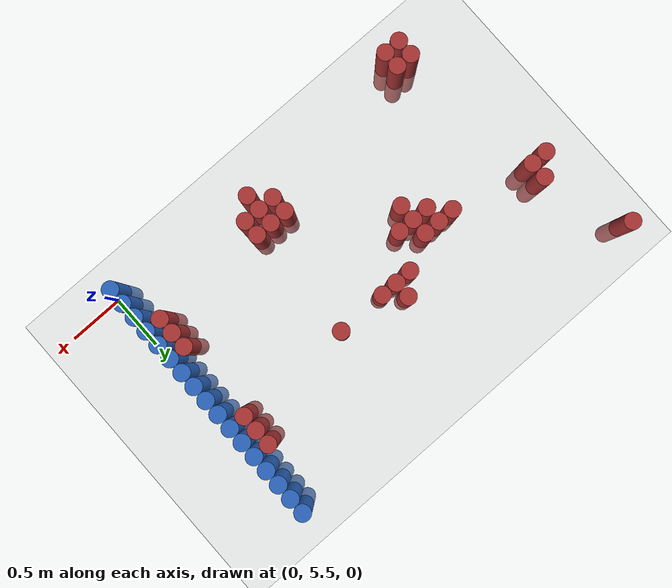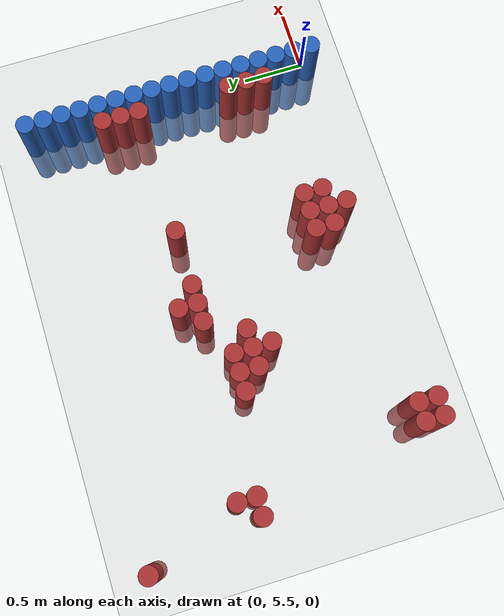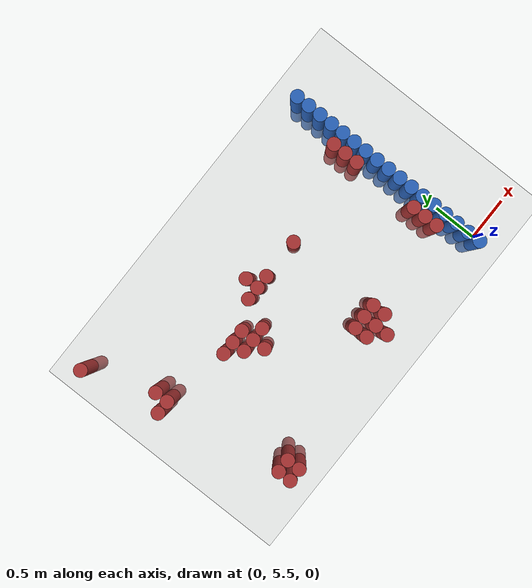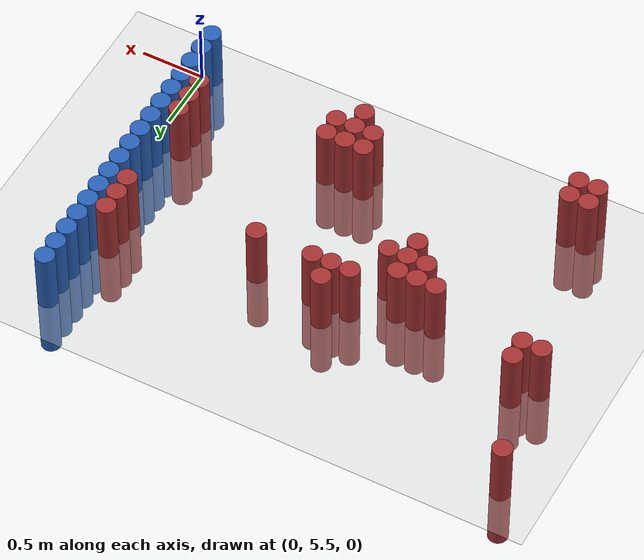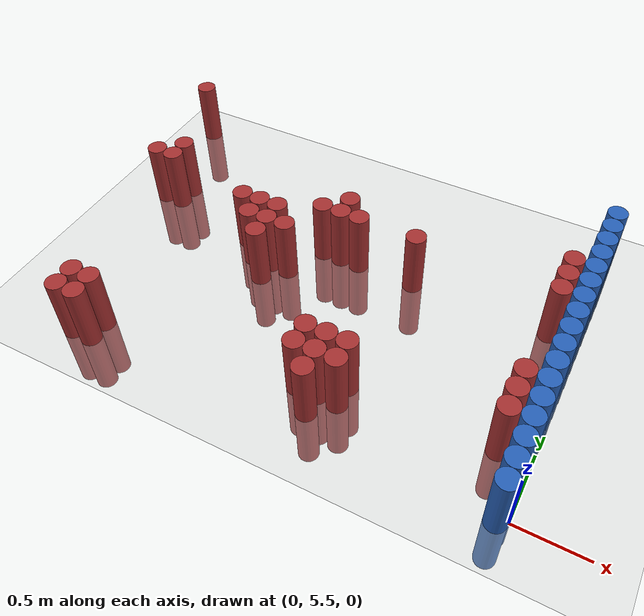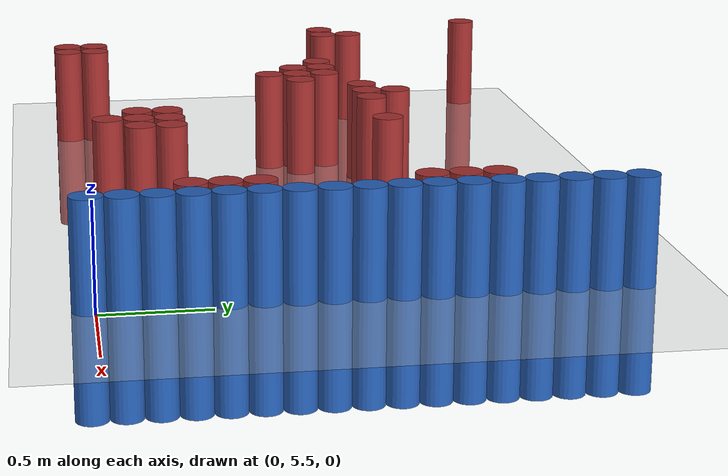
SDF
<sdf version="1.6">
 <world name="default">
  <model name="ground_plane">
   <static>1</static>
   <link name="link">
    <collision name="collision">
     <geometry><plane><normal>0 0 1</normal><size>100 100</size></plane></geometry>
     <surface><friction><ode><mu>100</mu><mu2>50</mu2></ode></friction></surface>
    </collision>
    <visual name="visual">
     <cast_shadows>0</cast_shadows>
     <geometry><plane><normal>0 0 1</normal><size>100 100</size></plane></geometry>
     <material>
      <script><uri>file://media/materials/scripts/gazebo.material</uri><name>Gazebo/Grey</name></script>
     </material>
    </visual>
   </link>
  </model>
  <model name="unit_cylinder_151">
   <static>1</static>
   <pose>-3.675000 7.875000 0.000000 0.000000 0.000000 0.000000</pose>
   <link name="link">
    <inertial>
     <mass>1</mass>
     <inertia><ixx>0.145833</ixx><ixy>0</ixy><ixz>0</ixz><iyy>0.145833</iyy><iyz>0</iyz><izz>0.125</izz></inertia>
    </inertial>
    <collision name="collision">
     <geometry><cylinder><radius>0.075000</radius><length>1</length></cylinder></geometry>
    </collision>
    <visual name="visual">
     <geometry><cylinder><radius>0.075000</radius><length>1</length></cylinder></geometry>
     <material>
      <ambient>0.648000 0.192000 0.192000 1</ambient>
      <diffuse>0.648000 0.192000 0.192000 1</diffuse>
     </material>
     <material>
      <script><name>Gazebo/Grey</name><uri>file://media/materials/scripts/gazebo.material</uri></script>
     </material>
    </visual>
   </link>
  </model>
  <model name="unit_cylinder_154">
   <static>1</static>
   <pose>-3.525000 6.975000 0.000000 0.000000 0.000000 0.000000</pose>
   <link name="link">
    <inertial>
     <mass>1</mass>
     <inertia><ixx>0.145833</ixx><ixy>0</ixy><ixz>0</ixz><iyy>0.145833</iyy><iyz>0</iyz><izz>0.125</izz></inertia>
    </inertial>
    <collision name="collision">
     <geometry><cylinder><radius>0.075000</radius><length>1</length></cylinder></geometry>
    </collision>
    <visual name="visual">
     <geometry><cylinder><radius>0.075000</radius><length>1</length></cylinder></geometry>
     <material>
      <ambient>0.648000 0.192000 0.192000 1</ambient>
      <diffuse>0.648000 0.192000 0.192000 1</diffuse>
     </material>
     <material>
      <script><name>Gazebo/Grey</name><uri>file://media/materials/scripts/gazebo.material</uri></script>
     </material>
    </visual>
   </link>
  </model>
  <model name="unit_cylinder_157">
   <static>1</static>
   <pose>-3.375000 6.975000 0.000000 0.000000 0.000000 0.000000</pose>
   <link name="link">
    <inertial>
     <mass>1</mass>
     <inertia><ixx>0.145833</ixx><ixy>0</ixy><ixz>0</ixz><iyy>0.145833</iyy><iyz>0</iyz><izz>0.125</izz></inertia>
    </inertial>
    <collision name="collision">
     <geometry><cylinder><radius>0.075000</radius><length>1</length></cylinder></geometry>
    </collision>
    <visual name="visual">
     <geometry><cylinder><radius>0.075000</radius><length>1</length></cylinder></geometry>
     <material>
      <ambient>0.648000 0.192000 0.192000 1</ambient>
      <diffuse>0.648000 0.192000 0.192000 1</diffuse>
     </material>
     <material>
      <script><name>Gazebo/Grey</name><uri>file://media/materials/scripts/gazebo.material</uri></script>
     </material>
    </visual>
   </link>
  </model>
  <model name="unit_cylinder_158">
   <static>1</static>
   <pose>-3.375000 7.125000 0.000000 0.000000 0.000000 0.000000</pose>
   <link name="link">
    <inertial>
     <mass>1</mass>
     <inertia><ixx>0.145833</ixx><ixy>0</ixy><ixz>0</ixz><iyy>0.145833</iyy><iyz>0</iyz><izz>0.125</izz></inertia>
    </inertial>
    <collision name="collision">
     <geometry><cylinder><radius>0.075000</radius><length>1</length></cylinder></geometry>
    </collision>
    <visual name="visual">
     <geometry><cylinder><radius>0.075000</radius><length>1</length></cylinder></geometry>
     <material>
      <ambient>0.648000 0.192000 0.192000 1</ambient>
      <diffuse>0.648000 0.192000 0.192000 1</diffuse>
     </material>
     <material>
      <script><name>Gazebo/Grey</name><uri>file://media/materials/scripts/gazebo.material</uri></script>
     </material>
    </visual>
   </link>
  </model>
  <model name="unit_cylinder_161">
   <static>1</static>
   <pose>-3.225000 5.475000 0.000000 0.000000 0.000000 0.000000</pose>
   <link name="link">
    <inertial>
     <mass>1</mass>
     <inertia><ixx>0.145833</ixx><ixy>0</ixy><ixz>0</ixz><iyy>0.145833</iyy><iyz>0</iyz><izz>0.125</izz></inertia>
    </inertial>
    <collision name="collision">
     <geometry><cylinder><radius>0.075000</radius><length>1</length></cylinder></geometry>
    </collision>
    <visual name="visual">
     <geometry><cylinder><radius>0.075000</radius><length>1</length></cylinder></geometry>
     <material>
      <ambient>0.648000 0.192000 0.192000 1</ambient>
      <diffuse>0.648000 0.192000 0.192000 1</diffuse>
     </material>
     <material>
      <script><name>Gazebo/Grey</name><uri>file://media/materials/scripts/gazebo.material</uri></script>
     </material>
    </visual>
   </link>
  </model>
  <model name="unit_cylinder_162">
   <static>1</static>
   <pose>-3.225000 5.625000 0.000000 0.000000 0.000000 0.000000</pose>
   <link name="link">
    <inertial>
     <mass>1</mass>
     <inertia><ixx>0.145833</ixx><ixy>0</ixy><ixz>0</ixz><iyy>0.145833</iyy><iyz>0</iyz><izz>0.125</izz></inertia>
    </inertial>
    <collision name="collision">
     <geometry><cylinder><radius>0.075000</radius><length>1</length></cylinder></geometry>
    </collision>
    <visual name="visual">
     <geometry><cylinder><radius>0.075000</radius><length>1</length></cylinder></geometry>
     <material>
      <ambient>0.648000 0.192000 0.192000 1</ambient>
      <diffuse>0.648000 0.192000 0.192000 1</diffuse>
     </material>
     <material>
      <script><name>Gazebo/Grey</name><uri>file://media/materials/scripts/gazebo.material</uri></script>
     </material>
    </visual>
   </link>
  </model>
  <model name="unit_cylinder_163">
   <static>1</static>
   <pose>-3.075000 5.475000 0.000000 0.000000 0.000000 0.000000</pose>
   <link name="link">
    <inertial>
     <mass>1</mass>
     <inertia><ixx>0.145833</ixx><ixy>0</ixy><ixz>0</ixz><iyy>0.145833</iyy><iyz>0</iyz><izz>0.125</izz></inertia>
    </inertial>
    <collision name="collision">
     <geometry><cylinder><radius>0.075000</radius><length>1</length></cylinder></geometry>
    </collision>
    <visual name="visual">
     <geometry><cylinder><radius>0.075000</radius><length>1</length></cylinder></geometry>
     <material>
      <ambient>0.648000 0.192000 0.192000 1</ambient>
      <diffuse>0.648000 0.192000 0.192000 1</diffuse>
     </material>
     <material>
      <script><name>Gazebo/Grey</name><uri>file://media/materials/scripts/gazebo.material</uri></script>
     </material>
    </visual>
   </link>
  </model>
  <model name="unit_cylinder_164">
   <static>1</static>
   <pose>-3.075000 5.625000 0.000000 0.000000 0.000000 0.000000</pose>
   <link name="link">
    <inertial>
     <mass>1</mass>
     <inertia><ixx>0.145833</ixx><ixy>0</ixy><ixz>0</ixz><iyy>0.145833</iyy><iyz>0</iyz><izz>0.125</izz></inertia>
    </inertial>
    <collision name="collision">
     <geometry><cylinder><radius>0.075000</radius><length>1</length></cylinder></geometry>
    </collision>
    <visual name="visual">
     <geometry><cylinder><radius>0.075000</radius><length>1</length></cylinder></geometry>
     <material>
      <ambient>0.648000 0.192000 0.192000 1</ambient>
      <diffuse>0.648000 0.192000 0.192000 1</diffuse>
     </material>
     <material>
      <script><name>Gazebo/Grey</name><uri>file://media/materials/scripts/gazebo.material</uri></script>
     </material>
    </visual>
   </link>
  </model>
  <model name="unit_cylinder_165">
   <static>1</static>
   <pose>-2.625000 6.825000 0.000000 0.000000 0.000000 0.000000</pose>
   <link name="link">
    <inertial>
     <mass>1</mass>
     <inertia><ixx>0.145833</ixx><ixy>0</ixy><ixz>0</ixz><iyy>0.145833</iyy><iyz>0</iyz><izz>0.125</izz></inertia>
    </inertial>
    <collision name="collision">
     <geometry><cylinder><radius>0.075000</radius><length>1</length></cylinder></geometry>
    </collision>
    <visual name="visual">
     <geometry><cylinder><radius>0.075000</radius><length>1</length></cylinder></geometry>
     <material>
      <ambient>0.648000 0.192000 0.192000 1</ambient>
      <diffuse>0.648000 0.192000 0.192000 1</diffuse>
     </material>
     <material>
      <script><name>Gazebo/Grey</name><uri>file://media/materials/scripts/gazebo.material</uri></script>
     </material>
    </visual>
   </link>
  </model>
  <model name="unit_cylinder_166">
   <static>1</static>
   <pose>-2.475000 6.675000 0.000000 0.000000 0.000000 0.000000</pose>
   <link name="link">
    <inertial>
     <mass>1</mass>
     <inertia><ixx>0.145833</ixx><ixy>0</ixy><ixz>0</ixz><iyy>0.145833</iyy><iyz>0</iyz><izz>0.125</izz></inertia>
    </inertial>
    <collision name="collision">
     <geometry><cylinder><radius>0.075000</radius><length>1</length></cylinder></geometry>
    </collision>
    <visual name="visual">
     <geometry><cylinder><radius>0.075000</radius><length>1</length></cylinder></geometry>
     <material>
      <ambient>0.648000 0.192000 0.192000 1</ambient>
      <diffuse>0.648000 0.192000 0.192000 1</diffuse>
     </material>
     <material>
      <script><name>Gazebo/Grey</name><uri>file://media/materials/scripts/gazebo.material</uri></script>
     </material>
    </visual>
   </link>
  </model>
  <model name="unit_cylinder_167">
   <static>1</static>
   <pose>-2.475000 6.825000 0.000000 0.000000 0.000000 0.000000</pose>
   <link name="link">
    <inertial>
     <mass>1</mass>
     <inertia><ixx>0.145833</ixx><ixy>0</ixy><ixz>0</ixz><iyy>0.145833</iyy><iyz>0</iyz><izz>0.125</izz></inertia>
    </inertial>
    <collision name="collision">
     <geometry><cylinder><radius>0.075000</radius><length>1</length></cylinder></geometry>
    </collision>
    <visual name="visual">
     <geometry><cylinder><radius>0.075000</radius><length>1</length></cylinder></geometry>
     <material>
      <ambient>0.648000 0.192000 0.192000 1</ambient>
      <diffuse>0.648000 0.192000 0.192000 1</diffuse>
     </material>
     <material>
      <script><name>Gazebo/Grey</name><uri>file://media/materials/scripts/gazebo.material</uri></script>
     </material>
    </visual>
   </link>
  </model>
  <model name="unit_cylinder_168">
   <static>1</static>
   <pose>-2.325000 6.525000 0.000000 0.000000 0.000000 0.000000</pose>
   <link name="link">
    <inertial>
     <mass>1</mass>
     <inertia><ixx>0.145833</ixx><ixy>0</ixy><ixz>0</ixz><iyy>0.145833</iyy><iyz>0</iyz><izz>0.125</izz></inertia>
    </inertial>
    <collision name="collision">
     <geometry><cylinder><radius>0.075000</radius><length>1</length></cylinder></geometry>
    </collision>
    <visual name="visual">
     <geometry><cylinder><radius>0.075000</radius><length>1</length></cylinder></geometry>
     <material>
      <ambient>0.648000 0.192000 0.192000 1</ambient>
      <diffuse>0.648000 0.192000 0.192000 1</diffuse>
     </material>
     <material>
      <script><name>Gazebo/Grey</name><uri>file://media/materials/scripts/gazebo.material</uri></script>
     </material>
    </visual>
   </link>
  </model>
  <model name="unit_cylinder_169">
   <static>1</static>
   <pose>-2.325000 6.675000 0.000000 0.000000 0.000000 0.000000</pose>
   <link name="link">
    <inertial>
     <mass>1</mass>
     <inertia><ixx>0.145833</ixx><ixy>0</ixy><ixz>0</ixz><iyy>0.145833</iyy><iyz>0</iyz><izz>0.125</izz></inertia>
    </inertial>
    <collision name="collision">
     <geometry><cylinder><radius>0.075000</radius><length>1</length></cylinder></geometry>
    </collision>
    <visual name="visual">
     <geometry><cylinder><radius>0.075000</radius><length>1</length></cylinder></geometry>
     <material>
      <ambient>0.648000 0.192000 0.192000 1</ambient>
      <diffuse>0.648000 0.192000 0.192000 1</diffuse>
     </material>
     <material>
      <script><name>Gazebo/Grey</name><uri>file://media/materials/scripts/gazebo.material</uri></script>
     </material>
    </visual>
   </link>
  </model>
  <model name="unit_cylinder_170">
   <static>1</static>
   <pose>-2.325000 6.825000 0.000000 0.000000 0.000000 0.000000</pose>
   <link name="link">
    <inertial>
     <mass>1</mass>
     <inertia><ixx>0.145833</ixx><ixy>0</ixy><ixz>0</ixz><iyy>0.145833</iyy><iyz>0</iyz><izz>0.125</izz></inertia>
    </inertial>
    <collision name="collision">
     <geometry><cylinder><radius>0.075000</radius><length>1</length></cylinder></geometry>
    </collision>
    <visual name="visual">
     <geometry><cylinder><radius>0.075000</radius><length>1</length></cylinder></geometry>
     <material>
      <ambient>0.648000 0.192000 0.192000 1</ambient>
      <diffuse>0.648000 0.192000 0.192000 1</diffuse>
     </material>
     <material>
      <script><name>Gazebo/Grey</name><uri>file://media/materials/scripts/gazebo.material</uri></script>
     </material>
    </visual>
   </link>
  </model>
  <model name="unit_cylinder_171">
   <static>1</static>
   <pose>-2.175000 6.675000 0.000000 0.000000 0.000000 0.000000</pose>
   <link name="link">
    <inertial>
     <mass>1</mass>
     <inertia><ixx>0.145833</ixx><ixy>0</ixy><ixz>0</ixz><iyy>0.145833</iyy><iyz>0</iyz><izz>0.125</izz></inertia>
    </inertial>
    <collision name="collision">
     <geometry><cylinder><radius>0.075000</radius><length>1</length></cylinder></geometry>
    </collision>
    <visual name="visual">
     <geometry><cylinder><radius>0.075000</radius><length>1</length></cylinder></geometry>
     <material>
      <ambient>0.648000 0.192000 0.192000 1</ambient>
      <diffuse>0.648000 0.192000 0.192000 1</diffuse>
     </material>
     <material>
      <script><name>Gazebo/Grey</name><uri>file://media/materials/scripts/gazebo.material</uri></script>
     </material>
    </visual>
   </link>
  </model>
  <model name="unit_cylinder_172">
   <static>1</static>
   <pose>-2.025000 6.975000 0.000000 0.000000 0.000000 0.000000</pose>
   <link name="link">
    <inertial>
     <mass>1</mass>
     <inertia><ixx>0.145833</ixx><ixy>0</ixy><ixz>0</ixz><iyy>0.145833</iyy><iyz>0</iyz><izz>0.125</izz></inertia>
    </inertial>
    <collision name="collision">
     <geometry><cylinder><radius>0.075000</radius><length>1</length></cylinder></geometry>
    </collision>
    <visual name="visual">
     <geometry><cylinder><radius>0.075000</radius><length>1</length></cylinder></geometry>
     <material>
      <ambient>0.648000 0.192000 0.192000 1</ambient>
      <diffuse>0.648000 0.192000 0.192000 1</diffuse>
     </material>
     <material>
      <script><name>Gazebo/Grey</name><uri>file://media/materials/scripts/gazebo.material</uri></script>
     </material>
    </visual>
   </link>
  </model>
  <model name="unit_cylinder_173">
   <static>1</static>
   <pose>-1.875000 6.975000 0.000000 0.000000 0.000000 0.000000</pose>
   <link name="link">
    <inertial>
     <mass>1</mass>
     <inertia><ixx>0.145833</ixx><ixy>0</ixy><ixz>0</ixz><iyy>0.145833</iyy><iyz>0</iyz><izz>0.125</izz></inertia>
    </inertial>
    <collision name="collision">
     <geometry><cylinder><radius>0.075000</radius><length>1</length></cylinder></geometry>
    </collision>
    <visual name="visual">
     <geometry><cylinder><radius>0.075000</radius><length>1</length></cylinder></geometry>
     <material>
      <ambient>0.648000 0.192000 0.192000 1</ambient>
      <diffuse>0.648000 0.192000 0.192000 1</diffuse>
     </material>
     <material>
      <script><name>Gazebo/Grey</name><uri>file://media/materials/scripts/gazebo.material</uri></script>
     </material>
    </visual>
   </link>
  </model>
  <model name="unit_cylinder_174">
   <static>1</static>
   <pose>-1.875000 7.125000 0.000000 0.000000 0.000000 0.000000</pose>
   <link name="link">
    <inertial>
     <mass>1</mass>
     <inertia><ixx>0.145833</ixx><ixy>0</ixy><ixz>0</ixz><iyy>0.145833</iyy><iyz>0</iyz><izz>0.125</izz></inertia>
    </inertial>
    <collision name="collision">
     <geometry><cylinder><radius>0.075000</radius><length>1</length></cylinder></geometry>
    </collision>
    <visual name="visual">
     <geometry><cylinder><radius>0.075000</radius><length>1</length></cylinder></geometry>
     <material>
      <ambient>0.648000 0.192000 0.192000 1</ambient>
      <diffuse>0.648000 0.192000 0.192000 1</diffuse>
     </material>
     <material>
      <script><name>Gazebo/Grey</name><uri>file://media/materials/scripts/gazebo.material</uri></script>
     </material>
    </visual>
   </link>
  </model>
  <model name="unit_cylinder_178">
   <static>1</static>
   <pose>-1.725000 6.975000 0.000000 0.000000 0.000000 0.000000</pose>
   <link name="link">
    <inertial>
     <mass>1</mass>
     <inertia><ixx>0.145833</ixx><ixy>0</ixy><ixz>0</ixz><iyy>0.145833</iyy><iyz>0</iyz><izz>0.125</izz></inertia>
    </inertial>
    <collision name="collision">
     <geometry><cylinder><radius>0.075000</radius><length>1</length></cylinder></geometry>
    </collision>
    <visual name="visual">
     <geometry><cylinder><radius>0.075000</radius><length>1</length></cylinder></geometry>
     <material>
      <ambient>0.648000 0.192000 0.192000 1</ambient>
      <diffuse>0.648000 0.192000 0.192000 1</diffuse>
     </material>
     <material>
      <script><name>Gazebo/Grey</name><uri>file://media/materials/scripts/gazebo.material</uri></script>
     </material>
    </visual>
   </link>
  </model>
  <model name="unit_cylinder_183">
   <static>1</static>
   <pose>-1.575000 5.775000 0.000000 0.000000 0.000000 0.000000</pose>
   <link name="link">
    <inertial>
     <mass>1</mass>
     <inertia><ixx>0.145833</ixx><ixy>0</ixy><ixz>0</ixz><iyy>0.145833</iyy><iyz>0</iyz><izz>0.125</izz></inertia>
    </inertial>
    <collision name="collision">
     <geometry><cylinder><radius>0.075000</radius><length>1</length></cylinder></geometry>
    </collision>
    <visual name="visual">
     <geometry><cylinder><radius>0.075000</radius><length>1</length></cylinder></geometry>
     <material>
      <ambient>0.648000 0.192000 0.192000 1</ambient>
      <diffuse>0.648000 0.192000 0.192000 1</diffuse>
     </material>
     <material>
      <script><name>Gazebo/Grey</name><uri>file://media/materials/scripts/gazebo.material</uri></script>
     </material>
    </visual>
   </link>
  </model>
  <model name="unit_cylinder_184">
   <static>1</static>
   <pose>-1.575000 5.925000 0.000000 0.000000 0.000000 0.000000</pose>
   <link name="link">
    <inertial>
     <mass>1</mass>
     <inertia><ixx>0.145833</ixx><ixy>0</ixy><ixz>0</ixz><iyy>0.145833</iyy><iyz>0</iyz><izz>0.125</izz></inertia>
    </inertial>
    <collision name="collision">
     <geometry><cylinder><radius>0.075000</radius><length>1</length></cylinder></geometry>
    </collision>
    <visual name="visual">
     <geometry><cylinder><radius>0.075000</radius><length>1</length></cylinder></geometry>
     <material>
      <ambient>0.648000 0.192000 0.192000 1</ambient>
      <diffuse>0.648000 0.192000 0.192000 1</diffuse>
     </material>
     <material>
      <script><name>Gazebo/Grey</name><uri>file://media/materials/scripts/gazebo.material</uri></script>
     </material>
    </visual>
   </link>
  </model>
  <model name="unit_cylinder_188">
   <static>1</static>
   <pose>-1.425000 5.625000 0.000000 0.000000 0.000000 0.000000</pose>
   <link name="link">
    <inertial>
     <mass>1</mass>
     <inertia><ixx>0.145833</ixx><ixy>0</ixy><ixz>0</ixz><iyy>0.145833</iyy><iyz>0</iyz><izz>0.125</izz></inertia>
    </inertial>
    <collision name="collision">
     <geometry><cylinder><radius>0.075000</radius><length>1</length></cylinder></geometry>
    </collision>
    <visual name="visual">
     <geometry><cylinder><radius>0.075000</radius><length>1</length></cylinder></geometry>
     <material>
      <ambient>0.648000 0.192000 0.192000 1</ambient>
      <diffuse>0.648000 0.192000 0.192000 1</diffuse>
     </material>
     <material>
      <script><name>Gazebo/Grey</name><uri>file://media/materials/scripts/gazebo.material</uri></script>
     </material>
    </visual>
   </link>
  </model>
  <model name="unit_cylinder_189">
   <static>1</static>
   <pose>-1.425000 5.775000 0.000000 0.000000 0.000000 0.000000</pose>
   <link name="link">
    <inertial>
     <mass>1</mass>
     <inertia><ixx>0.145833</ixx><ixy>0</ixy><ixz>0</ixz><iyy>0.145833</iyy><iyz>0</iyz><izz>0.125</izz></inertia>
    </inertial>
    <collision name="collision">
     <geometry><cylinder><radius>0.075000</radius><length>1</length></cylinder></geometry>
    </collision>
    <visual name="visual">
     <geometry><cylinder><radius>0.075000</radius><length>1</length></cylinder></geometry>
     <material>
      <ambient>0.648000 0.192000 0.192000 1</ambient>
      <diffuse>0.648000 0.192000 0.192000 1</diffuse>
     </material>
     <material>
      <script><name>Gazebo/Grey</name><uri>file://media/materials/scripts/gazebo.material</uri></script>
     </material>
    </visual>
   </link>
  </model>
  <model name="unit_cylinder_190">
   <static>1</static>
   <pose>-1.425000 5.925000 0.000000 0.000000 0.000000 0.000000</pose>
   <link name="link">
    <inertial>
     <mass>1</mass>
     <inertia><ixx>0.145833</ixx><ixy>0</ixy><ixz>0</ixz><iyy>0.145833</iyy><iyz>0</iyz><izz>0.125</izz></inertia>
    </inertial>
    <collision name="collision">
     <geometry><cylinder><radius>0.075000</radius><length>1</length></cylinder></geometry>
    </collision>
    <visual name="visual">
     <geometry><cylinder><radius>0.075000</radius><length>1</length></cylinder></geometry>
     <material>
      <ambient>0.648000 0.192000 0.192000 1</ambient>
      <diffuse>0.648000 0.192000 0.192000 1</diffuse>
     </material>
     <material>
      <script><name>Gazebo/Grey</name><uri>file://media/materials/scripts/gazebo.material</uri></script>
     </material>
    </visual>
   </link>
  </model>
  <model name="unit_cylinder_193">
   <static>1</static>
   <pose>-1.275000 5.775000 0.000000 0.000000 0.000000 0.000000</pose>
   <link name="link">
    <inertial>
     <mass>1</mass>
     <inertia><ixx>0.145833</ixx><ixy>0</ixy><ixz>0</ixz><iyy>0.145833</iyy><iyz>0</iyz><izz>0.125</izz></inertia>
    </inertial>
    <collision name="collision">
     <geometry><cylinder><radius>0.075000</radius><length>1</length></cylinder></geometry>
    </collision>
    <visual name="visual">
     <geometry><cylinder><radius>0.075000</radius><length>1</length></cylinder></geometry>
     <material>
      <ambient>0.648000 0.192000 0.192000 1</ambient>
      <diffuse>0.648000 0.192000 0.192000 1</diffuse>
     </material>
     <material>
      <script><name>Gazebo/Grey</name><uri>file://media/materials/scripts/gazebo.material</uri></script>
     </material>
    </visual>
   </link>
  </model>
  <model name="unit_cylinder_194">
   <static>1</static>
   <pose>-1.275000 5.925000 0.000000 0.000000 0.000000 0.000000</pose>
   <link name="link">
    <inertial>
     <mass>1</mass>
     <inertia><ixx>0.145833</ixx><ixy>0</ixy><ixz>0</ixz><iyy>0.145833</iyy><iyz>0</iyz><izz>0.125</izz></inertia>
    </inertial>
    <collision name="collision">
     <geometry><cylinder><radius>0.075000</radius><length>1</length></cylinder></geometry>
    </collision>
    <visual name="visual">
     <geometry><cylinder><radius>0.075000</radius><length>1</length></cylinder></geometry>
     <material>
      <ambient>0.648000 0.192000 0.192000 1</ambient>
      <diffuse>0.648000 0.192000 0.192000 1</diffuse>
     </material>
     <material>
      <script><name>Gazebo/Grey</name><uri>file://media/materials/scripts/gazebo.material</uri></script>
     </material>
    </visual>
   </link>
  </model>
  <model name="unit_cylinder_195">
   <static>1</static>
   <pose>-1.275000 6.975000 0.000000 0.000000 0.000000 0.000000</pose>
   <link name="link">
    <inertial>
     <mass>1</mass>
     <inertia><ixx>0.145833</ixx><ixy>0</ixy><ixz>0</ixz><iyy>0.145833</iyy><iyz>0</iyz><izz>0.125</izz></inertia>
    </inertial>
    <collision name="collision">
     <geometry><cylinder><radius>0.075000</radius><length>1</length></cylinder></geometry>
    </collision>
    <visual name="visual">
     <geometry><cylinder><radius>0.075000</radius><length>1</length></cylinder></geometry>
     <material>
      <ambient>0.648000 0.192000 0.192000 1</ambient>
      <diffuse>0.648000 0.192000 0.192000 1</diffuse>
     </material>
     <material>
      <script><name>Gazebo/Grey</name><uri>file://media/materials/scripts/gazebo.material</uri></script>
     </material>
    </visual>
   </link>
  </model>
  <model name="unit_cylinder_211">
   <static>1</static>
   <pose>-0.225000 5.925000 0.000000 0.000000 0.000000 0.000000</pose>
   <link name="link">
    <inertial>
     <mass>1</mass>
     <inertia><ixx>0.145833</ixx><ixy>0</ixy><ixz>0</ixz><iyy>0.145833</iyy><iyz>0</iyz><izz>0.125</izz></inertia>
    </inertial>
    <collision name="collision">
     <geometry><cylinder><radius>0.075000</radius><length>1</length></cylinder></geometry>
    </collision>
    <visual name="visual">
     <geometry><cylinder><radius>0.075000</radius><length>1</length></cylinder></geometry>
     <material>
      <ambient>0.648000 0.192000 0.192000 1</ambient>
      <diffuse>0.648000 0.192000 0.192000 1</diffuse>
     </material>
     <material>
      <script><name>Gazebo/Grey</name><uri>file://media/materials/scripts/gazebo.material</uri></script>
     </material>
    </visual>
   </link>
  </model>
  <model name="unit_cylinder_212">
   <static>1</static>
   <pose>-0.225000 6.075000 0.000000 0.000000 0.000000 0.000000</pose>
   <link name="link">
    <inertial>
     <mass>1</mass>
     <inertia><ixx>0.145833</ixx><ixy>0</ixy><ixz>0</ixz><iyy>0.145833</iyy><iyz>0</iyz><izz>0.125</izz></inertia>
    </inertial>
    <collision name="collision">
     <geometry><cylinder><radius>0.075000</radius><length>1</length></cylinder></geometry>
    </collision>
    <visual name="visual">
     <geometry><cylinder><radius>0.075000</radius><length>1</length></cylinder></geometry>
     <material>
      <ambient>0.648000 0.192000 0.192000 1</ambient>
      <diffuse>0.648000 0.192000 0.192000 1</diffuse>
     </material>
     <material>
      <script><name>Gazebo/Grey</name><uri>file://media/materials/scripts/gazebo.material</uri></script>
     </material>
    </visual>
   </link>
  </model>
  <model name="unit_cylinder_213">
   <static>1</static>
   <pose>-0.225000 6.225000 0.000000 0.000000 0.000000 0.000000</pose>
   <link name="link">
    <inertial>
     <mass>1</mass>
     <inertia><ixx>0.145833</ixx><ixy>0</ixy><ixz>0</ixz><iyy>0.145833</iyy><iyz>0</iyz><izz>0.125</izz></inertia>
    </inertial>
    <collision name="collision">
     <geometry><cylinder><radius>0.075000</radius><length>1</length></cylinder></geometry>
    </collision>
    <visual name="visual">
     <geometry><cylinder><radius>0.075000</radius><length>1</length></cylinder></geometry>
     <material>
      <ambient>0.648000 0.192000 0.192000 1</ambient>
      <diffuse>0.648000 0.192000 0.192000 1</diffuse>
     </material>
     <material>
      <script><name>Gazebo/Grey</name><uri>file://media/materials/scripts/gazebo.material</uri></script>
     </material>
    </visual>
   </link>
  </model>
  <model name="unit_cylinder_214">
   <static>1</static>
   <pose>-0.225000 6.975000 0.000000 0.000000 0.000000 0.000000</pose>
   <link name="link">
    <inertial>
     <mass>1</mass>
     <inertia><ixx>0.145833</ixx><ixy>0</ixy><ixz>0</ixz><iyy>0.145833</iyy><iyz>0</iyz><izz>0.125</izz></inertia>
    </inertial>
    <collision name="collision">
     <geometry><cylinder><radius>0.075000</radius><length>1</length></cylinder></geometry>
    </collision>
    <visual name="visual">
     <geometry><cylinder><radius>0.075000</radius><length>1</length></cylinder></geometry>
     <material>
      <ambient>0.648000 0.192000 0.192000 1</ambient>
      <diffuse>0.648000 0.192000 0.192000 1</diffuse>
     </material>
     <material>
      <script><name>Gazebo/Grey</name><uri>file://media/materials/scripts/gazebo.material</uri></script>
     </material>
    </visual>
   </link>
  </model>
  <model name="unit_cylinder_215">
   <static>1</static>
   <pose>-0.225000 7.125000 0.000000 0.000000 0.000000 0.000000</pose>
   <link name="link">
    <inertial>
     <mass>1</mass>
     <inertia><ixx>0.145833</ixx><ixy>0</ixy><ixz>0</ixz><iyy>0.145833</iyy><iyz>0</iyz><izz>0.125</izz></inertia>
    </inertial>
    <collision name="collision">
     <geometry><cylinder><radius>0.075000</radius><length>1</length></cylinder></geometry>
    </collision>
    <visual name="visual">
     <geometry><cylinder><radius>0.075000</radius><length>1</length></cylinder></geometry>
     <material>
      <ambient>0.648000 0.192000 0.192000 1</ambient>
      <diffuse>0.648000 0.192000 0.192000 1</diffuse>
     </material>
     <material>
      <script><name>Gazebo/Grey</name><uri>file://media/materials/scripts/gazebo.material</uri></script>
     </material>
    </visual>
   </link>
  </model>
  <model name="unit_cylinder_216">
   <static>1</static>
   <pose>-0.225000 7.275000 0.000000 0.000000 0.000000 0.000000</pose>
   <link name="link">
    <inertial>
     <mass>1</mass>
     <inertia><ixx>0.145833</ixx><ixy>0</ixy><ixz>0</ixz><iyy>0.145833</iyy><iyz>0</iyz><izz>0.125</izz></inertia>
    </inertial>
    <collision name="collision">
     <geometry><cylinder><radius>0.075000</radius><length>1</length></cylinder></geometry>
    </collision>
    <visual name="visual">
     <geometry><cylinder><radius>0.075000</radius><length>1</length></cylinder></geometry>
     <material>
      <ambient>0.648000 0.192000 0.192000 1</ambient>
      <diffuse>0.648000 0.192000 0.192000 1</diffuse>
     </material>
     <material>
      <script><name>Gazebo/Grey</name><uri>file://media/materials/scripts/gazebo.material</uri></script>
     </material>
    </visual>
   </link>
  </model>
  <model name="unit_cylinder_223">
   <static>1</static>
   <pose>-0.075000 5.475000 0.000000 0.000000 0.000000 0.000000</pose>
   <link name="link">
    <inertial>
     <mass>1</mass>
     <inertia><ixx>0.145833</ixx><ixy>0</ixy><ixz>0</ixz><iyy>0.145833</iyy><iyz>0</iyz><izz>0.125</izz></inertia>
    </inertial>
    <collision name="collision">
     <geometry><cylinder><radius>0.075000</radius><length>1</length></cylinder></geometry>
    </collision>
    <visual name="visual">
     <geometry><cylinder><radius>0.075000</radius><length>1</length></cylinder></geometry>
     <material>
      <ambient>0.152000 0.379000 0.720000 1</ambient>
      <diffuse>0.152000 0.379000 0.720000 1</diffuse>
     </material>
     <material>
      <script><name>Gazebo/Grey</name><uri>file://media/materials/scripts/gazebo.material</uri></script>
     </material>
    </visual>
   </link>
  </model>
  <model name="unit_cylinder_224">
   <static>1</static>
   <pose>-0.075000 5.625000 0.000000 0.000000 0.000000 0.000000</pose>
   <link name="link">
    <inertial>
     <mass>1</mass>
     <inertia><ixx>0.145833</ixx><ixy>0</ixy><ixz>0</ixz><iyy>0.145833</iyy><iyz>0</iyz><izz>0.125</izz></inertia>
    </inertial>
    <collision name="collision">
     <geometry><cylinder><radius>0.075000</radius><length>1</length></cylinder></geometry>
    </collision>
    <visual name="visual">
     <geometry><cylinder><radius>0.075000</radius><length>1</length></cylinder></geometry>
     <material>
      <ambient>0.152000 0.379000 0.720000 1</ambient>
      <diffuse>0.152000 0.379000 0.720000 1</diffuse>
     </material>
     <material>
      <script><name>Gazebo/Grey</name><uri>file://media/materials/scripts/gazebo.material</uri></script>
     </material>
    </visual>
   </link>
  </model>
  <model name="unit_cylinder_225">
   <static>1</static>
   <pose>-0.075000 5.775000 0.000000 0.000000 0.000000 0.000000</pose>
   <link name="link">
    <inertial>
     <mass>1</mass>
     <inertia><ixx>0.145833</ixx><ixy>0</ixy><ixz>0</ixz><iyy>0.145833</iyy><iyz>0</iyz><izz>0.125</izz></inertia>
    </inertial>
    <collision name="collision">
     <geometry><cylinder><radius>0.075000</radius><length>1</length></cylinder></geometry>
    </collision>
    <visual name="visual">
     <geometry><cylinder><radius>0.075000</radius><length>1</length></cylinder></geometry>
     <material>
      <ambient>0.152000 0.379000 0.720000 1</ambient>
      <diffuse>0.152000 0.379000 0.720000 1</diffuse>
     </material>
     <material>
      <script><name>Gazebo/Grey</name><uri>file://media/materials/scripts/gazebo.material</uri></script>
     </material>
    </visual>
   </link>
  </model>
  <model name="unit_cylinder_226">
   <static>1</static>
   <pose>-0.075000 5.925000 0.000000 0.000000 0.000000 0.000000</pose>
   <link name="link">
    <inertial>
     <mass>1</mass>
     <inertia><ixx>0.145833</ixx><ixy>0</ixy><ixz>0</ixz><iyy>0.145833</iyy><iyz>0</iyz><izz>0.125</izz></inertia>
    </inertial>
    <collision name="collision">
     <geometry><cylinder><radius>0.075000</radius><length>1</length></cylinder></geometry>
    </collision>
    <visual name="visual">
     <geometry><cylinder><radius>0.075000</radius><length>1</length></cylinder></geometry>
     <material>
      <ambient>0.152000 0.379000 0.720000 1</ambient>
      <diffuse>0.152000 0.379000 0.720000 1</diffuse>
     </material>
     <material>
      <script><name>Gazebo/Grey</name><uri>file://media/materials/scripts/gazebo.material</uri></script>
     </material>
    </visual>
   </link>
  </model>
  <model name="unit_cylinder_227">
   <static>1</static>
   <pose>-0.075000 6.075000 0.000000 0.000000 0.000000 0.000000</pose>
   <link name="link">
    <inertial>
     <mass>1</mass>
     <inertia><ixx>0.145833</ixx><ixy>0</ixy><ixz>0</ixz><iyy>0.145833</iyy><iyz>0</iyz><izz>0.125</izz></inertia>
    </inertial>
    <collision name="collision">
     <geometry><cylinder><radius>0.075000</radius><length>1</length></cylinder></geometry>
    </collision>
    <visual name="visual">
     <geometry><cylinder><radius>0.075000</radius><length>1</length></cylinder></geometry>
     <material>
      <ambient>0.152000 0.379000 0.720000 1</ambient>
      <diffuse>0.152000 0.379000 0.720000 1</diffuse>
     </material>
     <material>
      <script><name>Gazebo/Grey</name><uri>file://media/materials/scripts/gazebo.material</uri></script>
     </material>
    </visual>
   </link>
  </model>
  <model name="unit_cylinder_228">
   <static>1</static>
   <pose>-0.075000 6.225000 0.000000 0.000000 0.000000 0.000000</pose>
   <link name="link">
    <inertial>
     <mass>1</mass>
     <inertia><ixx>0.145833</ixx><ixy>0</ixy><ixz>0</ixz><iyy>0.145833</iyy><iyz>0</iyz><izz>0.125</izz></inertia>
    </inertial>
    <collision name="collision">
     <geometry><cylinder><radius>0.075000</radius><length>1</length></cylinder></geometry>
    </collision>
    <visual name="visual">
     <geometry><cylinder><radius>0.075000</radius><length>1</length></cylinder></geometry>
     <material>
      <ambient>0.152000 0.379000 0.720000 1</ambient>
      <diffuse>0.152000 0.379000 0.720000 1</diffuse>
     </material>
     <material>
      <script><name>Gazebo/Grey</name><uri>file://media/materials/scripts/gazebo.material</uri></script>
     </material>
    </visual>
   </link>
  </model>
  <model name="unit_cylinder_229">
   <static>1</static>
   <pose>-0.075000 6.375000 0.000000 0.000000 0.000000 0.000000</pose>
   <link name="link">
    <inertial>
     <mass>1</mass>
     <inertia><ixx>0.145833</ixx><ixy>0</ixy><ixz>0</ixz><iyy>0.145833</iyy><iyz>0</iyz><izz>0.125</izz></inertia>
    </inertial>
    <collision name="collision">
     <geometry><cylinder><radius>0.075000</radius><length>1</length></cylinder></geometry>
    </collision>
    <visual name="visual">
     <geometry><cylinder><radius>0.075000</radius><length>1</length></cylinder></geometry>
     <material>
      <ambient>0.152000 0.379000 0.720000 1</ambient>
      <diffuse>0.152000 0.379000 0.720000 1</diffuse>
     </material>
     <material>
      <script><name>Gazebo/Grey</name><uri>file://media/materials/scripts/gazebo.material</uri></script>
     </material>
    </visual>
   </link>
  </model>
  <model name="unit_cylinder_230">
   <static>1</static>
   <pose>-0.075000 6.525000 0.000000 0.000000 0.000000 0.000000</pose>
   <link name="link">
    <inertial>
     <mass>1</mass>
     <inertia><ixx>0.145833</ixx><ixy>0</ixy><ixz>0</ixz><iyy>0.145833</iyy><iyz>0</iyz><izz>0.125</izz></inertia>
    </inertial>
    <collision name="collision">
     <geometry><cylinder><radius>0.075000</radius><length>1</length></cylinder></geometry>
    </collision>
    <visual name="visual">
     <geometry><cylinder><radius>0.075000</radius><length>1</length></cylinder></geometry>
     <material>
      <ambient>0.152000 0.379000 0.720000 1</ambient>
      <diffuse>0.152000 0.379000 0.720000 1</diffuse>
     </material>
     <material>
      <script><name>Gazebo/Grey</name><uri>file://media/materials/scripts/gazebo.material</uri></script>
     </material>
    </visual>
   </link>
  </model>
  <model name="unit_cylinder_231">
   <static>1</static>
   <pose>-0.075000 6.675000 0.000000 0.000000 0.000000 0.000000</pose>
   <link name="link">
    <inertial>
     <mass>1</mass>
     <inertia><ixx>0.145833</ixx><ixy>0</ixy><ixz>0</ixz><iyy>0.145833</iyy><iyz>0</iyz><izz>0.125</izz></inertia>
    </inertial>
    <collision name="collision">
     <geometry><cylinder><radius>0.075000</radius><length>1</length></cylinder></geometry>
    </collision>
    <visual name="visual">
     <geometry><cylinder><radius>0.075000</radius><length>1</length></cylinder></geometry>
     <material>
      <ambient>0.152000 0.379000 0.720000 1</ambient>
      <diffuse>0.152000 0.379000 0.720000 1</diffuse>
     </material>
     <material>
      <script><name>Gazebo/Grey</name><uri>file://media/materials/scripts/gazebo.material</uri></script>
     </material>
    </visual>
   </link>
  </model>
  <model name="unit_cylinder_232">
   <static>1</static>
   <pose>-0.075000 6.825000 0.000000 0.000000 0.000000 0.000000</pose>
   <link name="link">
    <inertial>
     <mass>1</mass>
     <inertia><ixx>0.145833</ixx><ixy>0</ixy><ixz>0</ixz><iyy>0.145833</iyy><iyz>0</iyz><izz>0.125</izz></inertia>
    </inertial>
    <collision name="collision">
     <geometry><cylinder><radius>0.075000</radius><length>1</length></cylinder></geometry>
    </collision>
    <visual name="visual">
     <geometry><cylinder><radius>0.075000</radius><length>1</length></cylinder></geometry>
     <material>
      <ambient>0.152000 0.379000 0.720000 1</ambient>
      <diffuse>0.152000 0.379000 0.720000 1</diffuse>
     </material>
     <material>
      <script><name>Gazebo/Grey</name><uri>file://media/materials/scripts/gazebo.material</uri></script>
     </material>
    </visual>
   </link>
  </model>
  <model name="unit_cylinder_233">
   <static>1</static>
   <pose>-0.075000 6.975000 0.000000 0.000000 0.000000 0.000000</pose>
   <link name="link">
    <inertial>
     <mass>1</mass>
     <inertia><ixx>0.145833</ixx><ixy>0</ixy><ixz>0</ixz><iyy>0.145833</iyy><iyz>0</iyz><izz>0.125</izz></inertia>
    </inertial>
    <collision name="collision">
     <geometry><cylinder><radius>0.075000</radius><length>1</length></cylinder></geometry>
    </collision>
    <visual name="visual">
     <geometry><cylinder><radius>0.075000</radius><length>1</length></cylinder></geometry>
     <material>
      <ambient>0.152000 0.379000 0.720000 1</ambient>
      <diffuse>0.152000 0.379000 0.720000 1</diffuse>
     </material>
     <material>
      <script><name>Gazebo/Grey</name><uri>file://media/materials/scripts/gazebo.material</uri></script>
     </material>
    </visual>
   </link>
  </model>
  <model name="unit_cylinder_234">
   <static>1</static>
   <pose>-0.075000 7.125000 0.000000 0.000000 0.000000 0.000000</pose>
   <link name="link">
    <inertial>
     <mass>1</mass>
     <inertia><ixx>0.145833</ixx><ixy>0</ixy><ixz>0</ixz><iyy>0.145833</iyy><iyz>0</iyz><izz>0.125</izz></inertia>
    </inertial>
    <collision name="collision">
     <geometry><cylinder><radius>0.075000</radius><length>1</length></cylinder></geometry>
    </collision>
    <visual name="visual">
     <geometry><cylinder><radius>0.075000</radius><length>1</length></cylinder></geometry>
     <material>
      <ambient>0.152000 0.379000 0.720000 1</ambient>
      <diffuse>0.152000 0.379000 0.720000 1</diffuse>
     </material>
     <material>
      <script><name>Gazebo/Grey</name><uri>file://media/materials/scripts/gazebo.material</uri></script>
     </material>
    </visual>
   </link>
  </model>
  <model name="unit_cylinder_235">
   <static>1</static>
   <pose>-0.075000 7.275000 0.000000 0.000000 0.000000 0.000000</pose>
   <link name="link">
    <inertial>
     <mass>1</mass>
     <inertia><ixx>0.145833</ixx><ixy>0</ixy><ixz>0</ixz><iyy>0.145833</iyy><iyz>0</iyz><izz>0.125</izz></inertia>
    </inertial>
    <collision name="collision">
     <geometry><cylinder><radius>0.075000</radius><length>1</length></cylinder></geometry>
    </collision>
    <visual name="visual">
     <geometry><cylinder><radius>0.075000</radius><length>1</length></cylinder></geometry>
     <material>
      <ambient>0.152000 0.379000 0.720000 1</ambient>
      <diffuse>0.152000 0.379000 0.720000 1</diffuse>
     </material>
     <material>
      <script><name>Gazebo/Grey</name><uri>file://media/materials/scripts/gazebo.material</uri></script>
     </material>
    </visual>
   </link>
  </model>
  <model name="unit_cylinder_236">
   <static>1</static>
   <pose>-0.075000 7.425000 0.000000 0.000000 0.000000 0.000000</pose>
   <link name="link">
    <inertial>
     <mass>1</mass>
     <inertia><ixx>0.145833</ixx><ixy>0</ixy><ixz>0</ixz><iyy>0.145833</iyy><iyz>0</iyz><izz>0.125</izz></inertia>
    </inertial>
    <collision name="collision">
     <geometry><cylinder><radius>0.075000</radius><length>1</length></cylinder></geometry>
    </collision>
    <visual name="visual">
     <geometry><cylinder><radius>0.075000</radius><length>1</length></cylinder></geometry>
     <material>
      <ambient>0.152000 0.379000 0.720000 1</ambient>
      <diffuse>0.152000 0.379000 0.720000 1</diffuse>
     </material>
     <material>
      <script><name>Gazebo/Grey</name><uri>file://media/materials/scripts/gazebo.material</uri></script>
     </material>
    </visual>
   </link>
  </model>
  <model name="unit_cylinder_237">
   <static>1</static>
   <pose>-0.075000 7.575000 0.000000 0.000000 0.000000 0.000000</pose>
   <link name="link">
    <inertial>
     <mass>1</mass>
     <inertia><ixx>0.145833</ixx><ixy>0</ixy><ixz>0</ixz><iyy>0.145833</iyy><iyz>0</iyz><izz>0.125</izz></inertia>
    </inertial>
    <collision name="collision">
     <geometry><cylinder><radius>0.075000</radius><length>1</length></cylinder></geometry>
    </collision>
    <visual name="visual">
     <geometry><cylinder><radius>0.075000</radius><length>1</length></cylinder></geometry>
     <material>
      <ambient>0.152000 0.379000 0.720000 1</ambient>
      <diffuse>0.152000 0.379000 0.720000 1</diffuse>
     </material>
     <material>
      <script><name>Gazebo/Grey</name><uri>file://media/materials/scripts/gazebo.material</uri></script>
     </material>
    </visual>
   </link>
  </model>
  <model name="unit_cylinder_238">
   <static>1</static>
   <pose>-0.075000 7.725000 0.000000 0.000000 0.000000 0.000000</pose>
   <link name="link">
    <inertial>
     <mass>1</mass>
     <inertia><ixx>0.145833</ixx><ixy>0</ixy><ixz>0</ixz><iyy>0.145833</iyy><iyz>0</iyz><izz>0.125</izz></inertia>
    </inertial>
    <collision name="collision">
     <geometry><cylinder><radius>0.075000</radius><length>1</length></cylinder></geometry>
    </collision>
    <visual name="visual">
     <geometry><cylinder><radius>0.075000</radius><length>1</length></cylinder></geometry>
     <material>
      <ambient>0.152000 0.379000 0.720000 1</ambient>
      <diffuse>0.152000 0.379000 0.720000 1</diffuse>
     </material>
     <material>
      <script><name>Gazebo/Grey</name><uri>file://media/materials/scripts/gazebo.material</uri></script>
     </material>
    </visual>
   </link>
  </model>
  <model name="unit_cylinder_239">
   <static>1</static>
   <pose>-0.075000 7.875000 0.000000 0.000000 0.000000 0.000000</pose>
   <link name="link">
    <inertial>
     <mass>1</mass>
     <inertia><ixx>0.145833</ixx><ixy>0</ixy><ixz>0</ixz><iyy>0.145833</iyy><iyz>0</iyz><izz>0.125</izz></inertia>
    </inertial>
    <collision name="collision">
     <geometry><cylinder><radius>0.075000</radius><length>1</length></cylinder></geometry>
    </collision>
    <visual name="visual">
     <geometry><cylinder><radius>0.075000</radius><length>1</length></cylinder></geometry>
     <material>
      <ambient>0.152000 0.379000 0.720000 1</ambient>
      <diffuse>0.152000 0.379000 0.720000 1</diffuse>
     </material>
     <material>
      <script><name>Gazebo/Grey</name><uri>file://media/materials/scripts/gazebo.material</uri></script>
     </material>
    </visual>
   </link>
  </model>
 </world>
</sdf>
